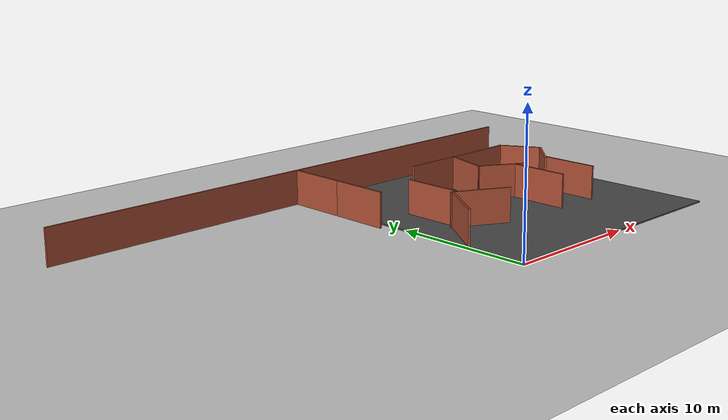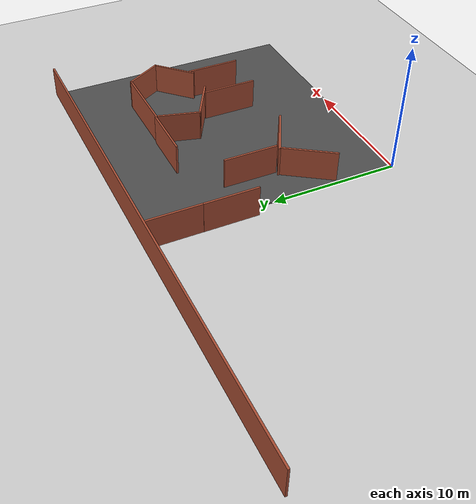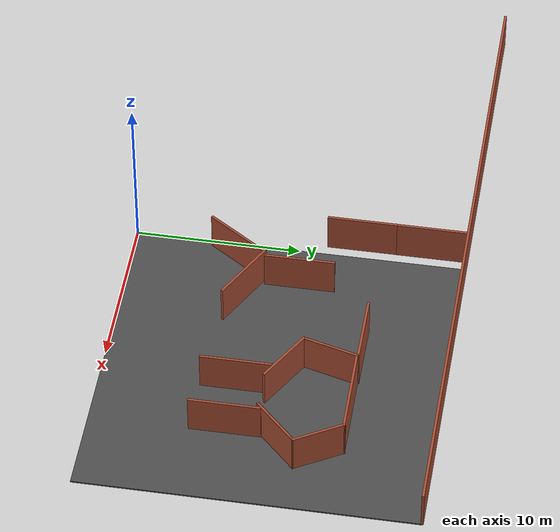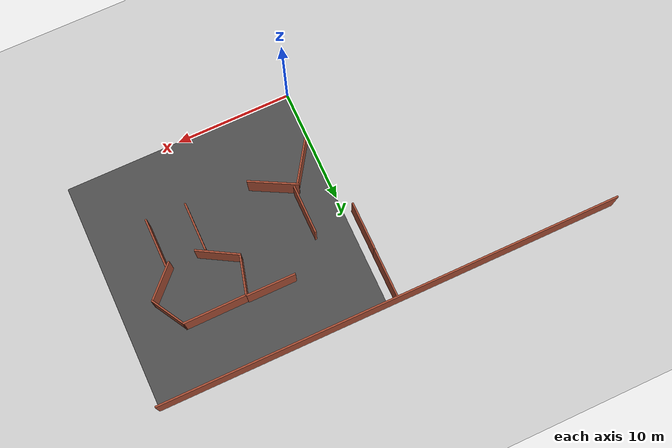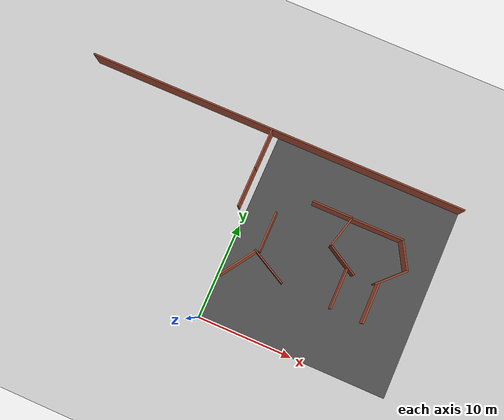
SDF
<sdf version="1.6">
 <world name="default">
  <model name="ground_plane">
   <static>1</static>
   <link name="link">
    <collision name="collision">
     <geometry><plane><normal>0 0 1</normal><size>100 100</size></plane></geometry>
     <surface><friction><ode><mu>100</mu><mu2>50</mu2></ode></friction></surface>
    </collision>
    <visual name="visual">
     <cast_shadows>0</cast_shadows>
     <geometry><plane><normal>0 0 1</normal><size>100 100</size></plane></geometry>
     <material>
      <script><uri>file://media/materials/scripts/gazebo.material</uri><name>Gazebo/Grey</name></script>
     </material>
    </visual>
   </link>
  </model>
  <model name="asphalt_plane">
   <static>1</static>
   <link name="link">
    <collision name="collision"><geometry><box><size>20 20 0.1</size></box></geometry></collision>
    <visual name="visual">
     <cast_shadows>0</cast_shadows>
     <geometry><box><size>20 20 0.1</size></box></geometry>
     <material>
      <script>
       <uri>model://asphalt_plane/materials/scripts</uri>
       <uri>model://asphalt_plane/materials/textures</uri>
       <name>vrc/asphalt</name>
      </script>
     </material>
    </visual>
   </link>
   <pose>10 10 0 0 -0 0</pose>
  </model>
  <model name="brick_longwalll_clone">
   <pose>-0.214439 20.0862 0 0 -0 0</pose>
   <link name="brick_longwall_wall_0">
    <collision name="brick_longwall_wall_0_Collision">
     <geometry><box><size>40.5 0.15 2.5</size></box></geometry>
     <pose>0 0 1.25 0 -0 0</pose>
    </collision>
    <visual name="brick_longwall_wall_0_Visual">
     <pose>0 0 1.25 0 -0 0</pose>
     <geometry><box><size>40.5 0.15 2.5</size></box></geometry>
     <material>
      <script><uri>file://media/materials/scripts/gazebo.material</uri><name>Gazebo/Bricks</name></script>
      <ambient>1 1 1 1</ambient>
     </material>
    </visual>
    <pose>1e-06 0 0 0 -0 0</pose>
   </link>
   <static>1</static>
  </model>
  <model name="brick_longwall_room1">
   <pose>13.1523 12.4323 0 0 -0 0</pose>
   <link name="brick_longwall_wall_11">
    <collision name="brick_longwall_wall_11_Collision">
     <geometry><box><size>3.25 0.15 2.5</size></box></geometry>
     <pose>0 0 1.25 0 -0 0</pose>
    </collision>
    <visual name="brick_longwall_wall_11_Visual">
     <pose>0 0 1.25 0 -0 0</pose>
     <geometry><box><size>3.25 0.15 2.5</size></box></geometry>
     <material>
      <script><uri>file://media/materials/scripts/gazebo.material</uri><name>Gazebo/Bricks</name></script>
      <ambient>1 1 1 1</ambient>
     </material>
    </visual>
    <pose>3.12132 1.19483 0 0 0 -1.0472</pose>
   </link>
   <link name="brick_longwall_wall_12">
    <collision name="brick_longwall_wall_12_Collision">
     <geometry><box><size>3.5 0.15 2.5</size></box></geometry>
     <pose>0 0 1.25 0 -0 0</pose>
    </collision>
    <visual name="brick_longwall_wall_12_Visual">
     <pose>0 0 1.25 0 -0 0</pose>
     <geometry><box><size>3.5 0.15 2.5</size></box></geometry>
     <material>
      <script><uri>file://media/materials/scripts/gazebo.material</uri><name>Gazebo/Bricks</name></script>
      <ambient>1 1 1 1</ambient>
     </material>
    </visual>
    <pose>2.71192 -1.33192 0 0 0 -2.35619</pose>
   </link>
   <link name="brick_longwall_wall_7">
    <collision name="brick_longwall_wall_7_Collision">
     <geometry><box><size>5.52935 0.15 2.5</size></box></geometry>
     <pose>0 0 1.25 0 -0 0</pose>
    </collision>
    <visual name="brick_longwall_wall_7_Visual">
     <pose>0 0 1.25 0 -0 0</pose>
     <geometry><box><size>5.52935 0.15 2.5</size></box></geometry>
     <material>
      <script><uri>file://media/materials/scripts/gazebo.material</uri><name>Gazebo/Bricks</name></script>
      <ambient>1 1 1 1</ambient>
     </material>
    </visual>
    <pose>-0.343285 2.51793 0 0 0 -3.13444</pose>
   </link>
   <link name="brick_longwall_wall_8">
    <collision name="brick_longwall_wall_8_Collision">
     <geometry><box><size>3.5 0.15 2.5</size></box></geometry>
     <pose>0 0 1.25 0 -0 0</pose>
    </collision>
    <visual name="brick_longwall_wall_8_Visual">
     <pose>0 0 1.25 0 -0 0</pose>
     <geometry><box><size>3.5 0.15 2.5</size></box></geometry>
     <material>
      <script><uri>file://media/materials/scripts/gazebo.material</uri><name>Gazebo/Bricks</name></script>
      <ambient>1 1 1 1</ambient>
     </material>
    </visual>
    <pose>-3.46641 0.880761 0 0 0 -1.8326</pose>
   </link>
   <link name="brick_longwall_wall_9">
    <collision name="brick_longwall_wall_9_Collision">
     <geometry><box><size>3.75 0.15 2.5</size></box></geometry>
     <pose>0 0 1.25 0 -0 0</pose>
    </collision>
    <visual name="brick_longwall_wall_9_Visual">
     <pose>0 0 1.25 0 -0 0</pose>
     <geometry><box><size>3.75 0.15 2.5</size></box></geometry>
     <material>
      <script><uri>file://media/materials/scripts/gazebo.material</uri><name>Gazebo/Bricks</name></script>
      <ambient>1 1 1 1</ambient>
     </material>
    </visual>
    <pose>-2.34109 -1.63716 0 0 0 -0.523599</pose>
   </link>
   <static>1</static>
  </model>
  <model name="worlds_1">
   <pose>3 10.4406 0 0 -0 0</pose>
   <link name="brick_longwall_wall_0">
    <collision name="brick_longwall_wall_0_Collision">
     <geometry><box><size>4.25 0.15 2.5</size></box></geometry>
     <pose>0 0 1.25 0 -0 0</pose>
    </collision>
    <visual name="brick_longwall_wall_0_Visual">
     <pose>0 0 1.25 0 -0 0</pose>
     <geometry><box><size>4.25 0.15 2.5</size></box></geometry>
     <material>
      <script><uri>file://media/materials/scripts/gazebo.material</uri><name>Gazebo/Bricks</name></script>
      <ambient>1 1 1 1</ambient>
     </material>
    </visual>
    <pose>0 -0 0 0 -0 1.5708</pose>
   </link>
   <static>1</static>
  </model>
  <model name="worlds_2">
   <pose>4.42901 7.33195 0 0 -0 1.08023</pose>
   <link name="brick_longwall_wall_0">
    <collision name="brick_longwall_wall_0_Collision">
     <geometry><box><size>4.25 0.15 2.5</size></box></geometry>
     <pose>0 0 1.25 0 -0 0</pose>
    </collision>
    <visual name="brick_longwall_wall_0_Visual">
     <pose>0 0 1.25 0 -0 0</pose>
     <geometry><box><size>4.25 0.15 2.5</size></box></geometry>
     <material>
      <script><uri>file://media/materials/scripts/gazebo.material</uri><name>Gazebo/Bricks</name></script>
      <ambient>1 1 1 1</ambient>
     </material>
    </visual>
    <pose>0 -0 0 0 -0 1.5708</pose>
   </link>
   <static>1</static>
  </model>
  <model name="worlds_1_clone">
   <pose>11.6021 8.07399 0 0 -0 0</pose>
   <link name="brick_longwall_wall_0">
    <collision name="brick_longwall_wall_0_Collision">
     <geometry><box><size>4.25 0.15 2.5</size></box></geometry>
     <pose>0 0 1.25 0 -0 0</pose>
    </collision>
    <visual name="brick_longwall_wall_0_Visual">
     <pose>0 0 1.25 0 -0 0</pose>
     <geometry><box><size>4.25 0.15 2.5</size></box></geometry>
     <material>
      <script><uri>file://media/materials/scripts/gazebo.material</uri><name>Gazebo/Bricks</name></script>
      <ambient>1 1 1 1</ambient>
     </material>
    </visual>
    <pose>0 -0 0 0 -0 1.5708</pose>
   </link>
   <static>1</static>
  </model>
  <model name="worlds_1_clone_0_clone_clone_0">
   <pose>8 15 0 0 0 -1.57092</pose>
   <link name="brick_longwall_wall_0">
    <collision name="brick_longwall_wall_0_Collision">
     <geometry><box><size>4.25 0.15 2.5</size></box></geometry>
     <pose>0 0 1.25 0 -0 0</pose>
    </collision>
    <visual name="brick_longwall_wall_0_Visual">
     <pose>0 0 1.25 0 -0 0</pose>
     <geometry><box><size>4.25 0.15 2.5</size></box></geometry>
     <material>
      <script><uri>file://media/materials/scripts/gazebo.material</uri><name>Gazebo/Bricks</name></script>
      <ambient>1 1 1 1</ambient>
     </material>
    </visual>
    <pose>0 -0 0 0 -0 1.5708</pose>
   </link>
   <static>1</static>
  </model>
  <model name="worlds_1_clone_1_clone_0">
   <pose>-0.708445 17.9147 0 0 -0 0</pose>
   <link name="brick_longwall_wall_0">
    <collision name="brick_longwall_wall_0_Collision">
     <geometry><box><size>4.25 0.15 2.5</size></box></geometry>
     <pose>0 0 1.25 0 -0 0</pose>
    </collision>
    <visual name="brick_longwall_wall_0_Visual">
     <pose>0 0 1.25 0 -0 0</pose>
     <geometry><box><size>4.25 0.15 2.5</size></box></geometry>
     <material>
      <script><uri>file://media/materials/scripts/gazebo.material</uri><name>Gazebo/Bricks</name></script>
      <ambient>1 1 1 1</ambient>
     </material>
    </visual>
    <pose>0 -0 0 0 -0 1.5708</pose>
   </link>
   <static>1</static>
  </model>
  <model name="worlds_1_clone_1_clone_1">
   <pose>-0.716318 13.714 0 0 -0 0</pose>
   <link name="brick_longwall_wall_0">
    <collision name="brick_longwall_wall_0_Collision">
     <geometry><box><size>4.25 0.15 2.5</size></box></geometry>
     <pose>0 0 1.25 0 -0 0</pose>
    </collision>
    <visual name="brick_longwall_wall_0_Visual">
     <pose>0 0 1.25 0 -0 0</pose>
     <geometry><box><size>4.25 0.15 2.5</size></box></geometry>
     <material>
      <script><uri>file://media/materials/scripts/gazebo.material</uri><name>Gazebo/Bricks</name></script>
      <ambient>1 1 1 1</ambient>
     </material>
    </visual>
    <pose>0 -0 0 0 -0 1.5708</pose>
   </link>
   <static>1</static>
  </model>
  <model name="worlds_1_clone_1_clone_7_clone_clone">
   <pose>1.48825 6.4581 0 0 0 -0.589381</pose>
   <link name="brick_longwall_wall_0">
    <collision name="brick_longwall_wall_0_Collision">
     <geometry><box><size>4.25 0.15 2.5</size></box></geometry>
     <pose>0 0 1.25 0 -0 0</pose>
    </collision>
    <visual name="brick_longwall_wall_0_Visual">
     <pose>0 0 1.25 0 -0 0</pose>
     <geometry><box><size>4.25 0.15 2.5</size></box></geometry>
     <material>
      <script><uri>file://media/materials/scripts/gazebo.material</uri><name>Gazebo/Bricks</name></script>
      <ambient>1 1 1 1</ambient>
     </material>
    </visual>
    <pose>0 -0 0 0 -0 1.5708</pose>
   </link>
   <static>1</static>
  </model>
  <model name="worlds_1_clone_clone">
   <pose>15 8 0 0 -0 0</pose>
   <link name="brick_longwall_wall_0">
    <collision name="brick_longwall_wall_0_Collision">
     <geometry><box><size>4.25 0.15 2.5</size></box></geometry>
     <pose>0 0 1.25 0 -0 0</pose>
    </collision>
    <visual name="brick_longwall_wall_0_Visual">
     <pose>0 0 1.25 0 -0 0</pose>
     <geometry><box><size>4.25 0.15 2.5</size></box></geometry>
     <material>
      <script><uri>file://media/materials/scripts/gazebo.material</uri><name>Gazebo/Bricks</name></script>
      <ambient>1 1 1 1</ambient>
     </material>
    </visual>
    <pose>0 -0 0 0 -0 1.5708</pose>
   </link>
   <static>1</static>
  </model>
 </world>
</sdf>
